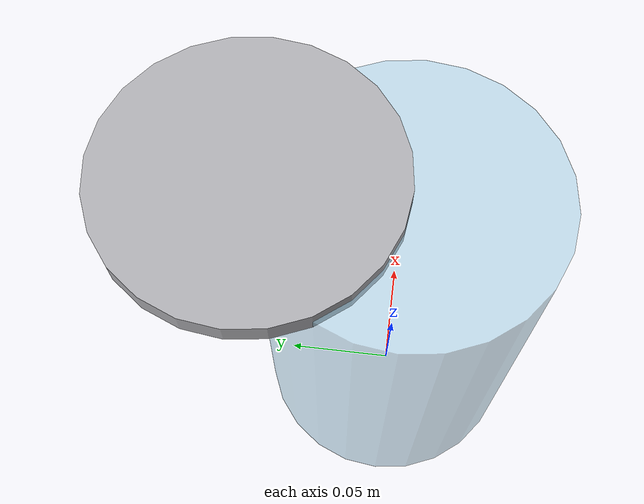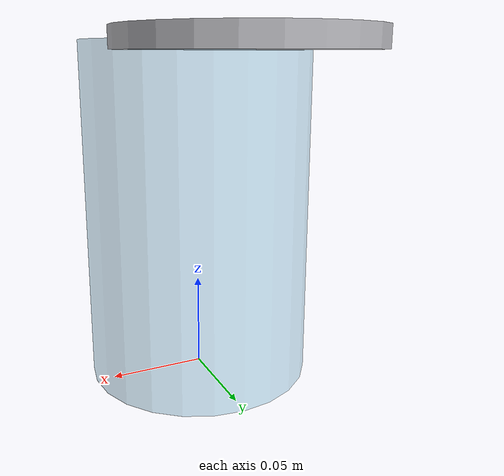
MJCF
<?xml version="1.0" encoding="utf-8"?>
<mujoco model="biofilm_reactor">
  <compiler angle="radian" autolimits="true"/>
  <default>
    <default class="body"><geom contype="1" conaffinity="1"/></default>
  </default>
  <worldbody>
    <body name="base">
      <geom type="cylinder" size="0.06 0.09" pos="0 0 0.09" rgba="0.6 0.8 0.9 0.5" class="body"/>
      <body name="reactor_lid" pos="0 0.06 0.18">
        <joint name="reactor_lid_joint" type="hinge" axis="1 0 0" range="0 1.6" damping="0.3" frictionloss="0.3"/>
  <geom type="cylinder" size="0.06 0.005" pos="0 0 0" rgba="0.7 0.7 0.72 1" class="body"/>
      </body>
    </body>
  </worldbody>
</mujoco>
